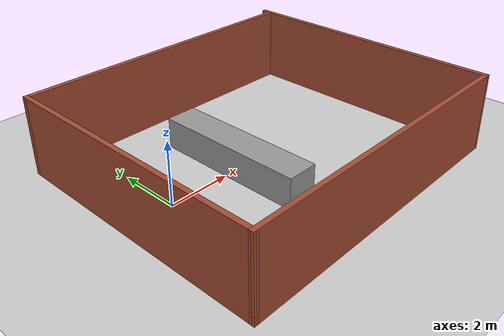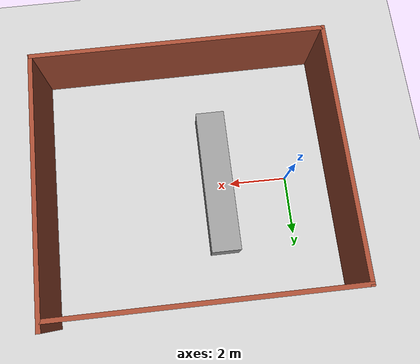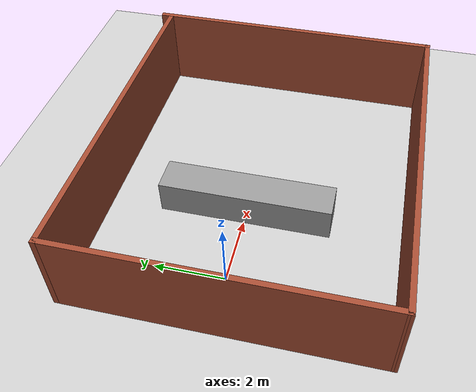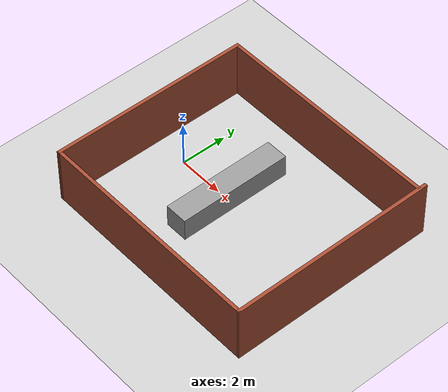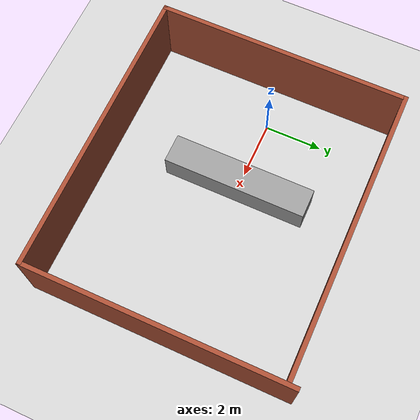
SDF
<sdf version="1.6">
 <world name="default">
  <light name="sun" type="directional">
   <pose>0 0 10 0 -0 0</pose>
   <diffuse>0.8 0.8 0.8 1</diffuse>
   <specular>0.2 0.2 0.2 1</specular>
   <attenuation>
    <range>1000</range>
    <constant>0.9</constant>
    <linear>0.01</linear>
    <quadratic>0.001</quadratic>
   </attenuation>
   <direction>-0.5 0.1 -0.9</direction>
  </light>
  <model name="ground_plane">
   <static>1</static>
   <link name="link">
    <collision name="collision">
     <geometry><plane><normal>0 0 1</normal><size>100 100</size></plane></geometry>
     <surface>
      <contact><collide_bitmask>65535</collide_bitmask></contact>
      <friction><ode><mu>100</mu><mu2>50</mu2></ode></friction>
     </surface>
    </collision>
    <visual name="visual">
     <cast_shadows>0</cast_shadows>
     <geometry><plane><normal>0 0 1</normal><size>100 100</size></plane></geometry>
     <material>
      <script><uri>file://media/materials/scripts/gazebo.material</uri><name>Gazebo/Grey</name></script>
     </material>
    </visual>
   </link>
  </model>
  <gravity>0 0 -9.8</gravity>
  <magnetic_field>6e-06 2.3e-05 -4.2e-05</magnetic_field>
  <atmosphere type="adiabatic"/>
  <physics name="default_physics" default="0" type="ode">
   <max_step_size>0.001</max_step_size>
   <real_time_factor>1</real_time_factor>
   <real_time_update_rate>1000</real_time_update_rate>
  </physics>
  <scene><ambient>0.4 0.4 0.4 1</ambient><background>0.7 0.7 0.7 1</background><shadows>1</shadows></scene>
  <audio><device>default</device></audio>
  <spherical_coordinates>
   <surface_model>EARTH_WGS84</surface_model>
   <latitude_deg>0</latitude_deg>
   <longitude_deg>0</longitude_deg>
   <elevation>0</elevation>
   <heading_deg>0</heading_deg>
  </spherical_coordinates>
  <model name="Arena">
   <pose>3.4032 -0.11419 0 0 -0 0</pose>
   <link name="Wall_0">
    <collision name="Wall_0_Collision">
     <geometry><box><size>10.0694 0.15 2.5</size></box></geometry>
     <pose>0 0 1.25 0 -0 0</pose>
    </collision>
    <visual name="Wall_0_Visual">
     <pose>0 0 1.25 0 -0 0</pose>
     <geometry><box><size>10.0694 0.15 2.5</size></box></geometry>
     <material>
      <script><uri>file://media/materials/scripts/gazebo.material</uri><name>Gazebo/Bricks</name></script>
      <ambient>0.921569 0.807843 0.615686 1</ambient>
     </material>
     <meta><layer>0</layer></meta>
    </visual>
    <pose>-0.011516 -4.42495 0 0 -0 0.001324</pose>
   </link>
   <link name="Wall_1">
    <collision name="Wall_1_Collision">
     <geometry><box><size>9 0.15 2.5</size></box></geometry>
     <pose>0 0 1.25 0 -0 0</pose>
    </collision>
    <visual name="Wall_1_Visual">
     <pose>0 0 1.25 0 -0 0</pose>
     <geometry><box><size>9 0.15 2.5</size></box></geometry>
     <material>
      <script><uri>file://media/materials/scripts/gazebo.material</uri><name>Gazebo/Bricks</name></script>
      <ambient>0.921569 0.807843 0.615686 1</ambient>
     </material>
     <meta><layer>0</layer></meta>
    </visual>
    <pose>4.97131 0.006615 0 0 -0 1.5708</pose>
   </link>
   <link name="Wall_5">
    <collision name="Wall_5_Collision">
     <geometry><box><size>8.75 0.15 2.5</size></box></geometry>
     <pose>0 0 1.25 0 -0 0</pose>
    </collision>
    <visual name="Wall_5_Visual">
     <pose>0 0 1.25 0 -0 0</pose>
     <geometry><box><size>8.75 0.15 2.5</size></box></geometry>
     <material>
      <script><uri>file://media/materials/scripts/gazebo.material</uri><name>Gazebo/Bricks</name></script>
      <ambient>0.921569 0.807843 0.615686 1</ambient>
     </material>
     <meta><layer>0</layer></meta>
    </visual>
    <pose>-4.97121 -0.131516 0 0 -0 -1.5708</pose>
   </link>
   <link name="Wall_7">
    <collision name="Wall_7_Collision">
     <geometry><box><size>10 0.15 2.5</size></box></geometry>
     <pose>0 0 1.25 0 -0 0</pose>
    </collision>
    <visual name="Wall_7_Visual">
     <pose>0 0 1.25 0 -0 0</pose>
     <geometry><box><size>10 0.15 2.5</size></box></geometry>
     <material>
      <script><uri>file://media/materials/scripts/gazebo.material</uri><name>Gazebo/Bricks</name></script>
      <ambient>0.921569 0.807843 0.615686 1</ambient>
     </material>
     <meta><layer>0</layer></meta>
    </visual>
    <pose>-0.046212 4.16848 0 0 -0 3.14159</pose>
   </link>
   <static>1</static>
  </model>
  <model name="unit_box">
   <link name="link">
    <inertial>
     <mass>0.495181</mass>
     <inertia><ixx>1.0531</ixx><ixy>0</ixy><ixz>0</ixz><iyy>0.0825301</iyy><iyz>0</iyz><izz>1.0531</izz></inertia>
    </inertial>
    <visual name="visual">
     <geometry><box><size>1 4.95181 1</size></box></geometry>
     <material>
      <script><name>Gazebo/Grey</name><uri>file://media/materials/scripts/gazebo.material</uri></script>
      <shader type="vertex"><normal_map>__default__</normal_map></shader>
     </material>
    </visual>
    <collision name="collision">
     <geometry><box><size>1 4.95181 1</size></box></geometry>
     <surface>
      <friction>
       <ode><mu>1</mu><mu2>1</mu2><fdir1>0 0 0</fdir1><slip1>0</slip1><slip2>0</slip2></ode>
       <torsional>
        <coefficient>1</coefficient>
        <patch_radius>0</patch_radius>
        <surface_radius>0</surface_radius>
        <use_patch_radius>1</use_patch_radius>
        <ode><slip>0</slip></ode>
       </torsional>
      </friction>
      <bounce><restitution_coefficient>0</restitution_coefficient><threshold>1e+06</threshold></bounce>
      <contact>
       <collide_without_contact>0</collide_without_contact>
       <collide_without_contact_bitmask>1</collide_without_contact_bitmask>
       <collide_bitmask>1</collide_bitmask>
       <ode>
        <soft_cfm>0</soft_cfm>
        <soft_erp>0.2</soft_erp>
        <kp>1e+13</kp>
        <kd>1</kd>
        <max_vel>0.01</max_vel>
        <min_depth>0</min_depth>
       </ode>
       <bullet>
        <split_impulse>1</split_impulse>
        <split_impulse_penetration_threshold>-0.01</split_impulse_penetration_threshold>
        <soft_cfm>0</soft_cfm>
        <soft_erp>0.2</soft_erp>
        <kp>1e+13</kp>
        <kd>1</kd>
       </bullet>
      </contact>
     </surface>
    </collision>
   </link>
   <static>0</static>
   <pose>2.5 0 0.5 0 -0 0</pose>
  </model>
 </world>
</sdf>
